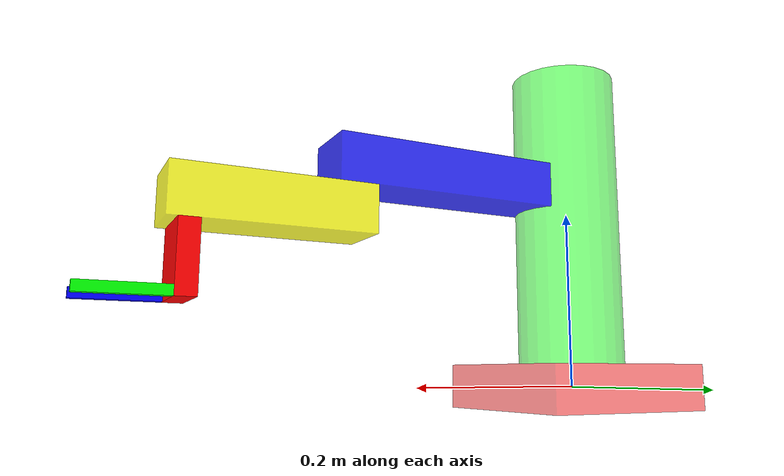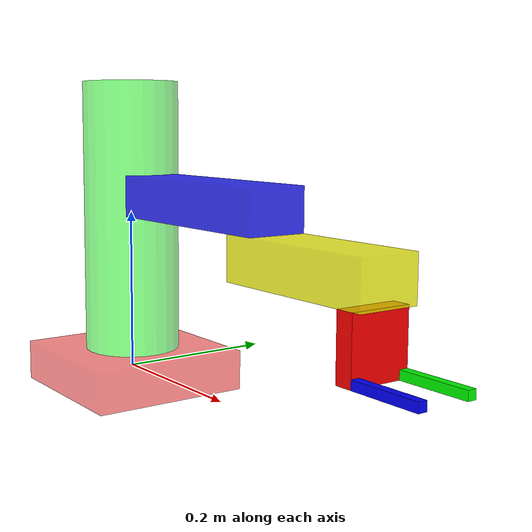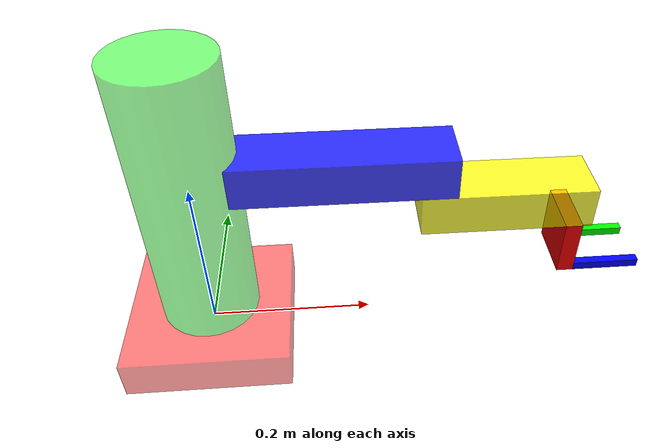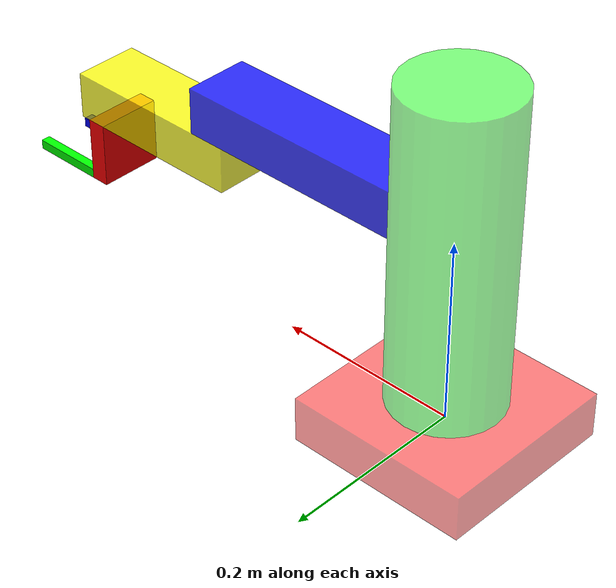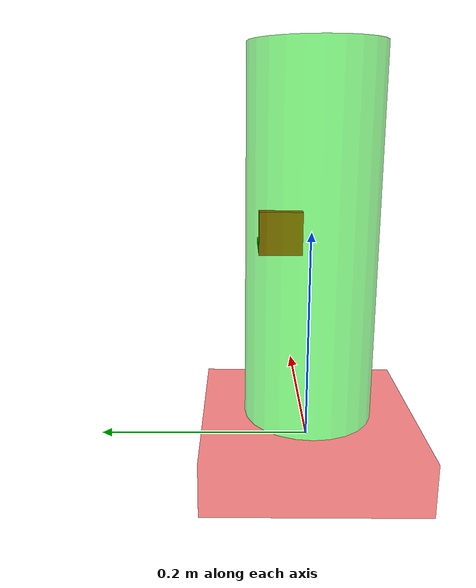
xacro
<robot xmlns:xacro="http://www.ros.org/wiki/xacro" name="scara_robot">
    <xacro:include filename="calculate_inertial.xacro" />

    <xacro:property name="base_link_x" value="0.2" />
    <xacro:property name="base_link_y" value="0.2" />
    <xacro:property name="base_link_z" value="0.05" />
    <xacro:property name="base_link_m" value="2" />

    <link name="base_link">
        <visual>
            <geometry>
                <box size="${base_link_x} ${base_link_y} ${base_link_z}" />
            </geometry>
            <origin xyz="0.0 0.0 0.0" rpy="0.0 0.0 0.0" />
            <material name="red">
                <color rgba="1.0 0.0 0.0 0.5" />
            </material>
        </visual>
        <collision>
            <geometry>
                <box size="${base_link_x} ${base_link_y} ${base_link_z}" />
            </geometry>
            <origin xyz="0.0 0.0 0.0" rpy="0.0 0.0 0.0" />
        </collision>
        <xacro:Box_inertial_matrix m="${base_link_m}" l="${base_link_x}" w="${base_link_y}"
            h="${base_link_z}" />
    </link>

    <xacro:property name="link1_radius" value="0.06" />
    <xacro:property name="link1_length" value="0.34" />
    <xacro:property name="link1_m" value="1.2" />

    <link name="link1">
        <visual>
            <geometry>
                <cylinder radius="${link1_radius}" length="${link1_length}" />
            </geometry>
            <origin xyz="0.0 0.0 0.0" rpy="0.0 0.0 0.0" />
            <material name="green">
                <color rgba="0.0 1 0.0 0.5" />
            </material>
        </visual>
        <collision>
            <geometry>
                <cylinder radius="${link1_radius}" length="${link1_length}" />
            </geometry>
            <origin xyz="0.0 0.0 0.0" rpy="0.0 0.0 0.0" />
        </collision>
        <xacro:cylinder_inertial_matrix m="${link1_m}" r="${link1_radius}" h="${link1_length}" />
    </link>

    <joint name="link1_to_base" type="revolute">
        <parent link="base_link" />
        <child link="link1" />
        <origin xyz="0.0 0.0 ${(link1_length+base_link_z)/2}" rpy="0.0 0.0 0.0" />
        <axis xyz="0.0 0.0 1" />
        <limit lower="-3.14" upper="2.355" effort="0.45" velocity="0.5" />
    </joint>

    <xacro:property name="link2_x" value="0.3" />
    <xacro:property name="link2_y" value="0.07" />
    <xacro:property name="link2_z" value="0.05" />
    <xacro:property name="link2_m" value="0.05" />

    <link name="link2">
        <visual>
            <geometry>
                <box size="${link2_x} ${link2_y} ${link2_z}" />
            </geometry>
            <origin xyz="0 0.0  0.0" rpy="0.0 0.0 0.0" />
            <material name="blue">
                <color rgba="0.0 0.0 1 0.8" />
            </material>
        </visual>
        <collision>
            <geometry>
                <box size="${link2_x} ${link2_y} ${link2_z}" />
                <origin xyz="0 0.0  0.0" rpy="0.0 0.0 0.0" />
            </geometry>
        </collision>
        <xacro:Box_inertial_matrix m="${link2_m}" l="${link2_x}" w="${link2_y}" h="${link2_z}" />
    </link>

    <xacro:property name="link2_exercis_space" value="0.16" />
    <xacro:property name="link1_dead_zone" value="0.04" />

    <joint name="link2_to_link1" type="prismatic">
        <parent link="link1" />
        <child link="link2" />
        <origin xyz="${link2_x/2} 0.0 ${link1_dead_zone+link2_exercis_space-link1_length/2}" />
        <axis xyz="0.0 0.0 1" />
        <limit lower="${-link2_exercis_space}" upper="0.0" effort="0.45" velocity="0.5" />
    </joint>

    <xacro:property name="link3_x" value="0.2" />
    <xacro:property name="link3_y" value="0.07" />
    <xacro:property name="link3_z" value="0.05" />
    <xacro:property name="link3_visul_origin_x_offest" value="${link3_x/2-0.02}" />
    <xacro:property name="link3_m" value="0.8" />

    <link name="link3">
        <visual>
            <geometry>
                <box size="${link3_x} ${link3_y} ${link3_z}" />
            </geometry>
            <origin xyz="${link3_visul_origin_x_offest} 0.0 0.0" rpy="0.0 0.0 0.0" />
            <material name="yellow">
                <color rgba="1 1 0 0.8" />
            </material>
        </visual>
        <collision>
            <geometry>
                <box size="${link3_x} ${link3_y} ${link3_z}" />
            </geometry>
            <origin xyz="${link3_visul_origin_x_offest} 0.0  0.0" rpy="0.0 0.0 0.0" />
        </collision>
        <inertial>
            <origin xyz="${link3_visul_origin_x_offest} 0.0 0.0" />
            <mass value="${link3_m}" />
            <inertia ixx="${link3_m*(link3_z*link3_z + link3_x*link3_x)/12}" ixy="0" ixz="0"
                iyy="${link3_m*(link3_y*link3_y + link3_x*link3_x)/12}" iyz="0"
                izz="${link3_m*(link3_y*link3_y + link3_z*link3_z)/12}" />
        </inertial>
    </link>

    <joint name="link3_to_link2" type="revolute">
        <parent link="link2" />
        <child link="link3" />
        <origin xyz="${link2_x/2-0.02} 0.0 ${-(link3_z+link2_z)/2}" rpy="0.0 0.0 0.0" />
        <axis xyz="0.0 0.0 1" />
        <limit lower="3.10" upper="-2.61" effort="0.45" velocity="0.5" />
    </joint>

    <xacro:property name="gripper_base_link_x" value="0.02" />
    <xacro:property name="gripper_base_link_y" value="0.07" />
    <xacro:property name="gripper_base_link_z" value="0.07" />
    <xacro:property name="gripper_base_link_m" value="0.3" />

    <link name="gripper_base_link">
        <visual>
            <geometry>
                <box size="${gripper_base_link_x} ${gripper_base_link_y} ${gripper_base_link_z}" />
            </geometry>
            <origin xyz="0.0 0.0 0.0" rpy="0.0 0.0 0.0" />
            <material name="red">
                <color rgba="1 0 0.0 1.0" />
            </material>
        </visual>
        <collision>
            <geometry>
                <box size="${gripper_base_link_x} ${gripper_base_link_y} ${gripper_base_link_z}" />
            </geometry>
            <origin xyz="0.0 0.0 0.0" rpy="0.0 0.0 0.0" />
        </collision>
        <xacro:Box_inertial_matrix m="${gripper_base_link_m}" l="${gripper_base_link_x}"
            w="${gripper_base_link_y}" h="${gripper_base_link_z}" />
    </link>

    <joint name="gripper_base_link_to_link3" type="revolute">
        <parent link="link3" />
        <child link="gripper_base_link" />
        <origin xyz="${(link3_x/2-0.02)*2} 0.0 ${-(link3_z+gripper_base_link_z)/2}"
            rpy="0.0 0.0 0.0" />
        <axis xyz="0.0 0.0 1.0" />
        <limit lower="-2.61" upper="2.61" effort="0.0" velocity="0.0" />
    </joint>

    <xacro:property name="gripper_finger_link_x" value="0.08" />
    <xacro:property name="gripper_finger_link_y" value="0.01" />
    <xacro:property name="gripper_finger_link_z" value="0.01" />
    <xacro:property name="gripper_finger_link_m" value="0.1" />

    <link name="gripper_left">
        <visual>
            <geometry>
                <box
                    size="${gripper_finger_link_x} ${gripper_finger_link_y} ${gripper_finger_link_z}" />
            </geometry>
            <origin xyz="0.0 0.0 0.0" rpy="0.0 0.0 0.0" />
            <material name="green">
                <color rgba="0.0 1 0.0 1.0" />
            </material>
        </visual>
        <collision>
            <geometry>
                <box
                    size="${gripper_finger_link_x} ${gripper_finger_link_y} ${gripper_finger_link_z}" />
            </geometry>
            <origin xyz="0.0 0.0 0.0" rpy="0.0 0.0 0.0" />
        </collision>
        <xacro:Box_inertial_matrix m="${gripper_finger_link_m}" l="${gripper_finger_link_x}"
            w="${gripper_finger_link_y}" h="${gripper_finger_link_z}" />
    </link>

    <joint name="left_to_gripper_base" type="prismatic">
        <parent link="gripper_base_link" />
        <child link="gripper_left" />
        <origin
            xyz="${(gripper_base_link_x+gripper_finger_link_x)/2} ${(gripper_base_link_y-gripper_finger_link_y)/2} ${-(gripper_base_link_z-gripper_finger_link_z)/2}"
            rpy="0.0 0.0 0.0" />
        <axis xyz="0.0 1 0" />
        <limit lower="-0.025" upper="0" effort="0.0" velocity="0.0" />
    </joint>

    <link name="gripper_right">
        <visual>
            <geometry>
                <box
                    size="${gripper_finger_link_x} ${gripper_finger_link_y} ${gripper_finger_link_z}" />
            </geometry>
            <origin xyz="0.0 0.0 0.0" rpy="0.0 0.0 0.0" />
            <material name="blue">
                <color rgba="0.0 0 1 1.0" />
            </material>
        </visual>
        <collision>
            <geometry>
                <box
                    size="${gripper_finger_link_x} ${gripper_finger_link_y} ${gripper_finger_link_z}" />
            </geometry>
            <origin xyz="0.0 0.0 0.0" rpy="0.0 0.0 0.0" />
        </collision>
        <xacro:Box_inertial_matrix m="${gripper_finger_link_m}" l="${gripper_finger_link_x}"
            w="${gripper_finger_link_y}" h="${gripper_finger_link_z}" />
    </link>

    <joint name="right_to_gripper_base" type="prismatic">
        <parent link="gripper_base_link" />
        <child link="gripper_right" />
        <origin
            xyz="${(gripper_base_link_x+gripper_finger_link_x)/2} ${-(gripper_base_link_y-gripper_finger_link_y)/2} ${-(gripper_base_link_z-gripper_finger_link_z)/2}"
            rpy="0.0 0.0 0.0" />
        <axis xyz="0.0 1 0" />
        <limit lower="0" upper="0.025" effort="0.0" velocity="0.0" />
    </joint>
</robot>
